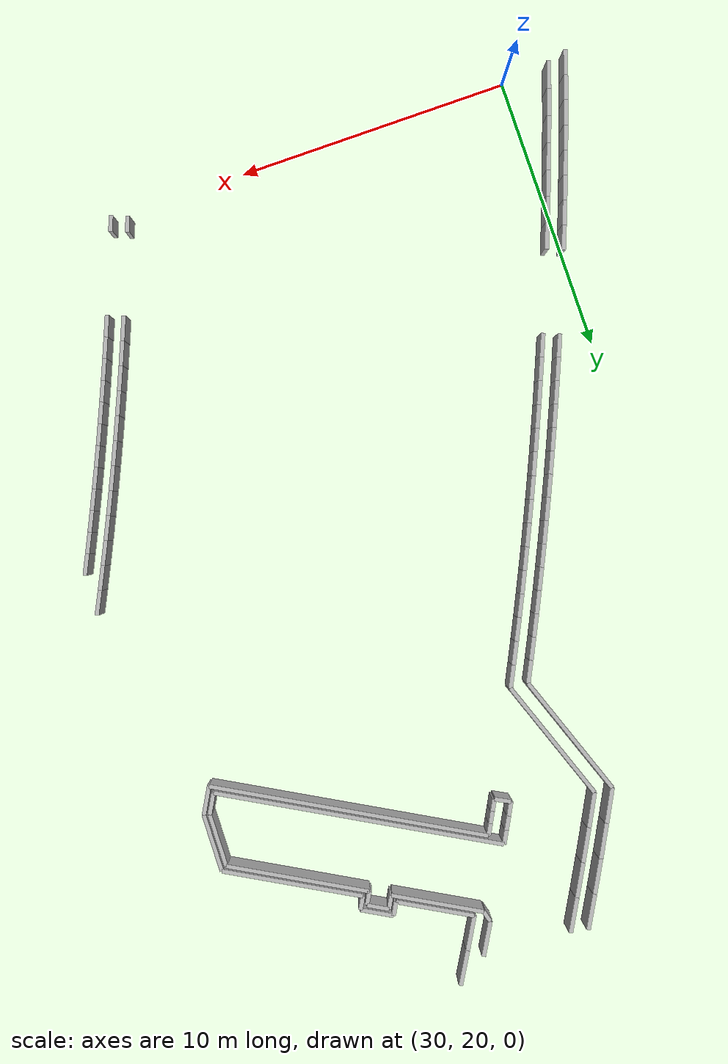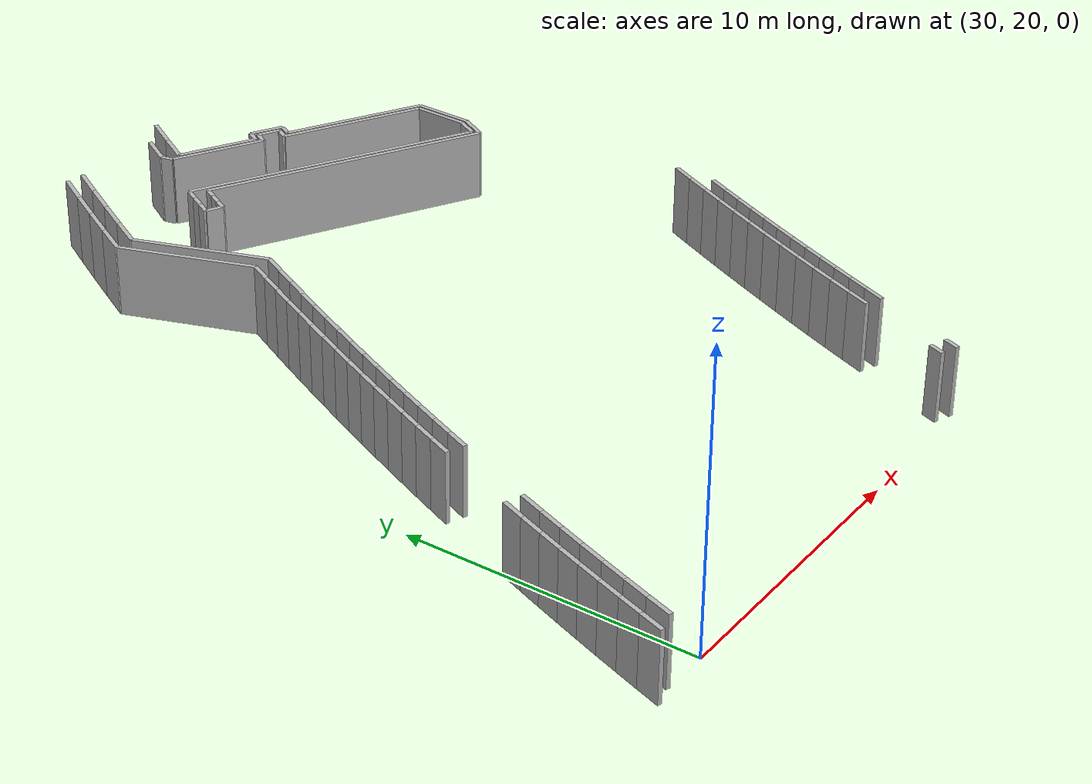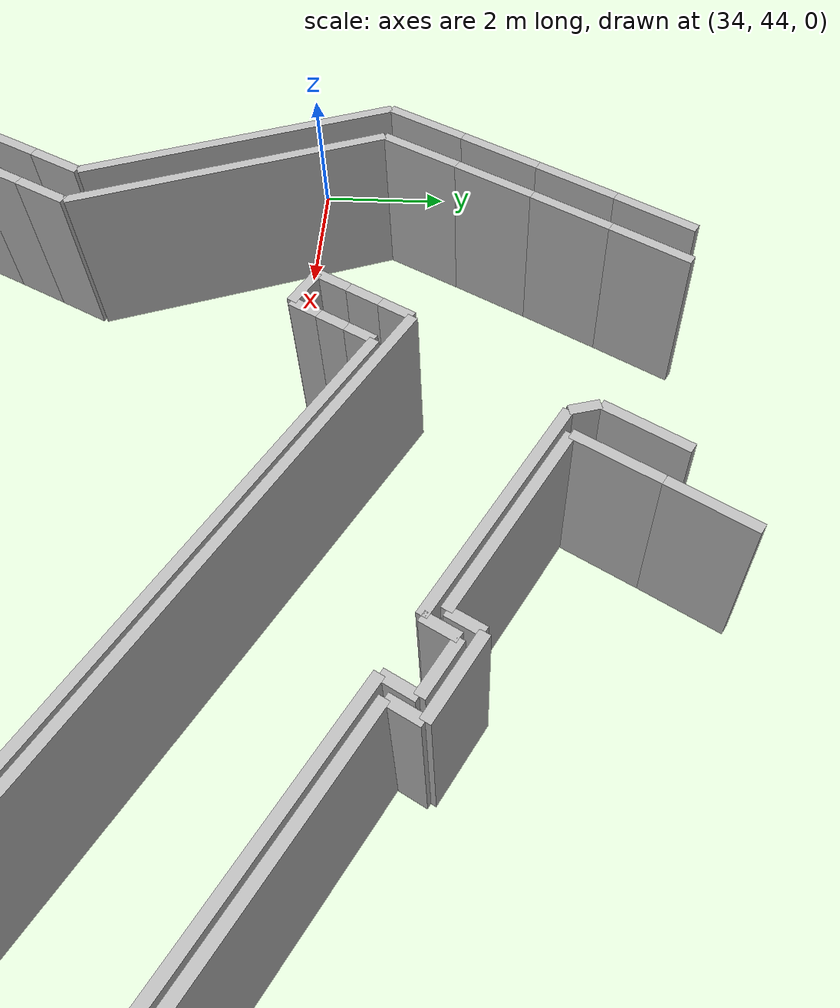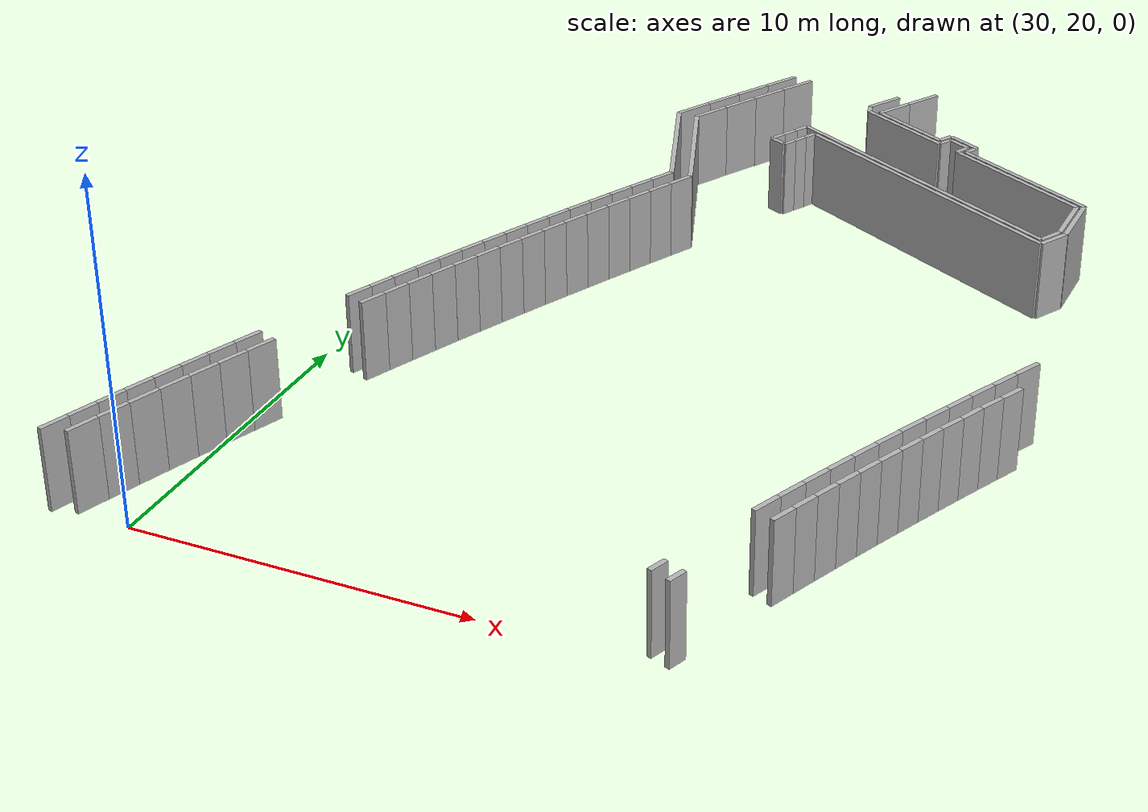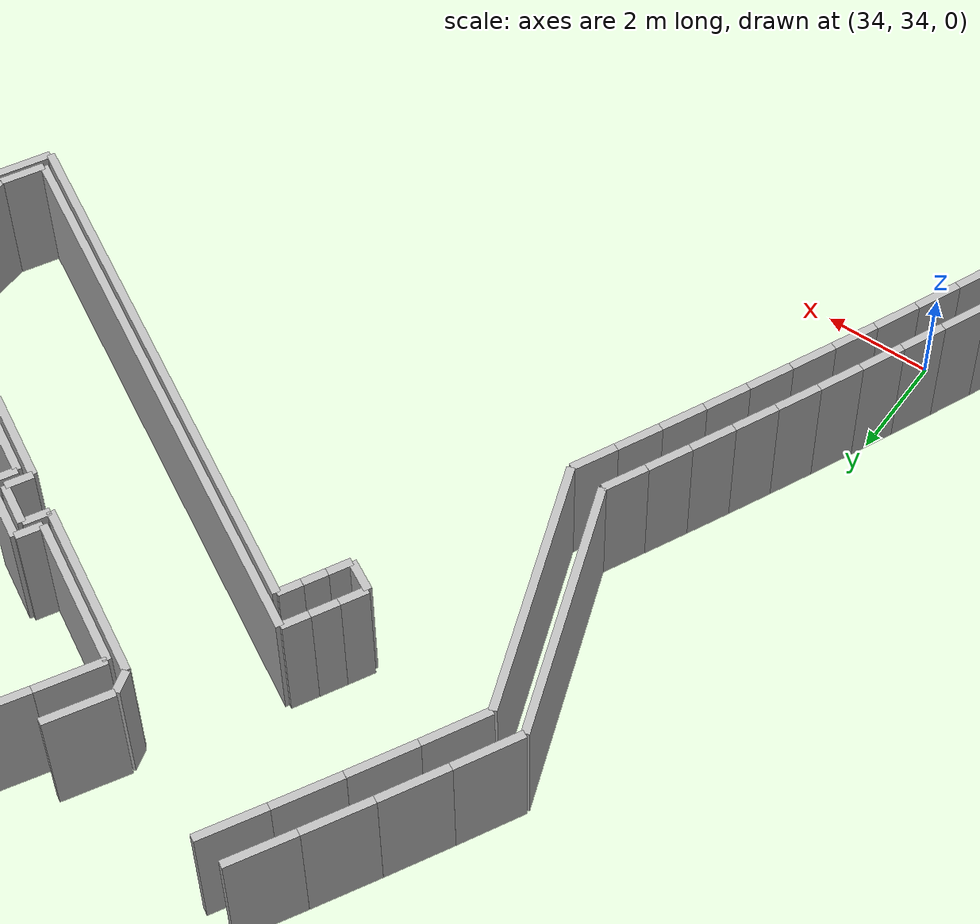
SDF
<sdf version="1.6">
 <model name="sps_0104">
  <static>1</static>
  <allow_auto_disable>0</allow_auto_disable>
  <link name="Wall18">
   <collision name="collision"><geometry><box><size>4.78812 0.15 2.5</size></box></geometry></collision>
   <visual name="visual">
    <geometry><box><size>4.78812 0.15 2.5</size></box></geometry>
    <transparency>0.0</transparency>
   </visual>
   <pose>35.5532 43.0615 1.25 0 -0 1.91603</pose>
  </link>
  <link name="Wall20">
   <collision name="collision"><geometry><box><size>5.20006 0.15 2.5</size></box></geometry></collision>
   <visual name="visual">
    <geometry><box><size>5.20006 0.15 2.5</size></box></geometry>
    <transparency>0.0</transparency>
   </visual>
   <pose>46.4302 44.7029 1.25 0 0 -0.509252</pose>
  </link>
  <link name="Wall21">
   <collision name="collision"><geometry><box><size>2.09372 0.15 2.5</size></box></geometry></collision>
   <visual name="visual">
    <geometry><box><size>2.09372 0.15 2.5</size></box></geometry>
    <transparency>0.0</transparency>
   </visual>
   <pose>48.8801 42.5041 1.25 0 0 -1.59298</pose>
  </link>
  <link name="Wall394">
   <collision name="collision"><geometry><box><size>0.800152 0.15 2.5</size></box></geometry></collision>
   <visual name="visual">
    <geometry><box><size>0.800152 0.15 2.5</size></box></geometry>
    <transparency>0.0</transparency>
   </visual>
   <pose>44.055 46.6013 1.25 0 0 -0.509751</pose>
  </link>
  <link name="Wall743">
   <collision name="collision"><geometry><box><size>3.34433 0.15 2.5</size></box></geometry></collision>
   <visual name="visual">
    <geometry><box><size>3.34433 0.15 2.5</size></box></geometry>
    <transparency>0.0</transparency>
   </visual>
   <pose>42.0015 47.1758 1.25 0 0 -0.509018</pose>
  </link>
  <link name="Wall744">
   <collision name="collision"><geometry><box><size>0.500654 0.15 2.5</size></box></geometry></collision>
   <visual name="visual">
    <geometry><box><size>0.500654 0.15 2.5</size></box></geometry>
    <transparency>0.0</transparency>
   </visual>
   <pose>43.5065 46.8509 1.25 0 -0 1.06183</pose>
  </link>
  <link name="Wall747">
   <collision name="collision"><geometry><box><size>10.1437 0.15 2.5</size></box></geometry></collision>
   <visual name="visual">
    <geometry><box><size>10.1437 0.15 2.5</size></box></geometry>
    <transparency>0.0</transparency>
   </visual>
   <pose>43.917 43.0137 1.25 0 0 -0.509242</pose>
  </link>
  <link name="Wall1130">
   <collision name="collision"><geometry><box><size>0.499388 0.15 2.5</size></box></geometry></collision>
   <visual name="visual">
    <geometry><box><size>0.499388 0.15 2.5</size></box></geometry>
    <transparency>0.0</transparency>
   </visual>
   <pose>44.2822 46.1883 1.25 0 0 -2.08174</pose>
  </link>
  <link name="Wall1134">
   <collision name="collision"><geometry><box><size>0.800069 0.15 2.5</size></box></geometry></collision>
   <visual name="visual">
    <geometry><box><size>0.800069 0.15 2.5</size></box></geometry>
    <transparency>0.0</transparency>
   </visual>
   <pose>48.463 41.1631 1.25 0 0 -2.08052</pose>
  </link>
  <link name="Wall1460">
   <collision name="collision"><geometry><box><size>2.84281 0.15 2.5</size></box></geometry></collision>
   <visual name="visual">
    <geometry><box><size>2.84281 0.15 2.5</size></box></geometry>
    <transparency>0.0</transparency>
   </visual>
   <pose>42.1435 47.3253 1.25 0 0 -0.509271</pose>
  </link>
  <link name="Wall1463">
   <collision name="collision"><geometry><box><size>10.5448 0.15 2.5</size></box></geometry></collision>
   <visual name="visual">
    <geometry><box><size>10.5448 0.15 2.5</size></box></geometry>
    <transparency>0.0</transparency>
   </visual>
   <pose>43.6644 43.3842 1.25 0 0 -0.509219</pose>
  </link>
  <link name="Wall1465">
   <collision name="collision"><geometry><box><size>1.04952 0.15 2.5</size></box></geometry></collision>
   <visual name="visual">
    <geometry><box><size>1.04952 0.15 2.5</size></box></geometry>
    <transparency>0.0</transparency>
   </visual>
   <pose>48.601 40.9993 1.25 0 0 -2.07997</pose>
  </link>
  <link name="Wall1750">
   <collision name="collision"><geometry><box><size>0.600396 0.15 2.5</size></box></geometry></collision>
   <visual name="visual">
    <geometry><box><size>0.600396 0.15 2.5</size></box></geometry>
    <transparency>0.0</transparency>
   </visual>
   <pose>38.5906 44.4573 1.25 0 -0 2.65107</pose>
  </link>
  <link name="Wall1751">
   <collision name="collision"><geometry><box><size>0.422163 0.15 2.5</size></box></geometry></collision>
   <visual name="visual">
    <geometry><box><size>0.422163 0.15 2.5</size></box></geometry>
    <transparency>0.0</transparency>
   </visual>
   <pose>40.4849 48.1941 1.25 0 0 -1.30018</pose>
  </link>
  <link name="Wall1753">
   <collision name="collision"><geometry><box><size>0.499388 0.15 2.5</size></box></geometry></collision>
   <visual name="visual">
    <geometry><box><size>0.499388 0.15 2.5</size></box></geometry>
    <transparency>0.0</transparency>
   </visual>
   <pose>43.5837 46.5787 1.25 0 -0 1.05985</pose>
  </link>
  <link name="Wall1754">
   <collision name="collision"><geometry><box><size>0.500654 0.15 2.5</size></box></geometry></collision>
   <visual name="visual">
    <geometry><box><size>0.500654 0.15 2.5</size></box></geometry>
    <transparency>0.0</transparency>
   </visual>
   <pose>44.5543 46.2657 1.25 0 0 -2.07977</pose>
  </link>
  <link name="Wall1758">
   <collision name="collision"><geometry><box><size>1.92349 0.15 2.5</size></box></geometry></collision>
   <visual name="visual">
    <geometry><box><size>1.92349 0.15 2.5</size></box></geometry>
    <transparency>0.0</transparency>
   </visual>
   <pose>48.6793 42.4738 1.25 0 0 -1.59266</pose>
  </link>
  <link name="Wall2088">
   <collision name="collision"><geometry><box><size>4.78007 0.15 2.5</size></box></geometry></collision>
   <visual name="visual">
    <geometry><box><size>4.78007 0.15 2.5</size></box></geometry>
    <transparency>0.0</transparency>
   </visual>
   <pose>36.2067 43.0187 1.25 0 -0 1.91602</pose>
  </link>
  <link name="Wall2095">
   <collision name="collision"><geometry><box><size>5.12073 0.15 2.5</size></box></geometry></collision>
   <visual name="visual">
    <geometry><box><size>5.12073 0.15 2.5</size></box></geometry>
    <transparency>0.0</transparency>
   </visual>
   <pose>46.6678 44.7989 1.25 0 0 -0.509233</pose>
  </link>
  <link name="Wall2471">
   <collision name="collision"><geometry><box><size>1.20014 0.15 2.5</size></box></geometry></collision>
   <visual name="visual">
    <geometry><box><size>1.20014 0.15 2.5</size></box></geometry>
    <transparency>0.0</transparency>
   </visual>
   <pose>44.1523 46.7769 1.25 0 0 -0.509356</pose>
  </link>
  <link name="Wall6435">
   <collision name="collision"><geometry><box><size>0.514157 0.15 2.5</size></box></geometry></collision>
   <visual name="visual">
    <geometry><box><size>0.514157 0.15 2.5</size></box></geometry>
    <transparency>0.0</transparency>
   </visual>
   <pose>38.4477 44.8251 1.25 0 -0 1.0771</pose>
  </link>
  <link name="Wall6436">
   <collision name="collision"><geometry><box><size>0.51415 0.15 2.5</size></box></geometry></collision>
   <visual name="visual">
    <geometry><box><size>0.51415 0.15 2.5</size></box></geometry>
    <transparency>0.0</transparency>
   </visual>
   <pose>38.692 45.2775 1.25 0 -0 1.07412</pose>
  </link>
  <link name="Wall6437">
   <collision name="collision"><geometry><box><size>0.51391 0.15 2.5</size></box></geometry></collision>
   <visual name="visual">
    <geometry><box><size>0.51391 0.15 2.5</size></box></geometry>
    <transparency>0.0</transparency>
   </visual>
   <pose>38.9377 45.729 1.25 0 -0 1.07076</pose>
  </link>
  <link name="Wall6438">
   <collision name="collision"><geometry><box><size>0.56098 0.15 2.5</size></box></geometry></collision>
   <visual name="visual">
    <geometry><box><size>0.56098 0.15 2.5</size></box></geometry>
    <transparency>0.0</transparency>
   </visual>
   <pose>44.5047 20.5969 1.25 0 0 -1.93385</pose>
  </link>
  <link name="Wall6494">
   <collision name="collision"><geometry><box><size>1.27311 0.15 2.5</size></box></geometry></collision>
   <visual name="visual">
    <geometry><box><size>1.27311 0.15 2.5</size></box></geometry>
    <transparency>0.0</transparency>
   </visual>
   <pose>40.7465 48.9489 1.25 0 0 -2.09393</pose>
  </link>
  <link name="Wall8968">
   <collision name="collision"><geometry><box><size>0.557815 0.15 2.5</size></box></geometry></collision>
   <visual name="visual">
    <geometry><box><size>0.557815 0.15 2.5</size></box></geometry>
    <transparency>0.0</transparency>
   </visual>
   <pose>45.0632 20.3786 1.25 0 0 -1.93401</pose>
  </link>
  <link name="Wall9016">
   <collision name="collision"><geometry><box><size>0.895531 0.15 2.5</size></box></geometry></collision>
   <visual name="visual">
    <geometry><box><size>0.895531 0.15 2.5</size></box></geometry>
    <transparency>0.0</transparency>
   </visual>
   <pose>49.9253 33.0418 1.25 0 0 -2.02929</pose>
  </link>
  <link name="Wall9017">
   <collision name="collision"><geometry><box><size>0.895579 0.15 2.5</size></box></geometry></collision>
   <visual name="visual">
    <geometry><box><size>0.895579 0.15 2.5</size></box></geometry>
    <transparency>0.0</transparency>
   </visual>
   <pose>49.5315 32.2375 1.25 0 0 -2.02289</pose>
  </link>
  <link name="Wall9018">
   <collision name="collision"><geometry><box><size>0.895603 0.15 2.5</size></box></geometry></collision>
   <visual name="visual">
    <geometry><box><size>0.895603 0.15 2.5</size></box></geometry>
    <transparency>0.0</transparency>
   </visual>
   <pose>49.1427 31.4307 1.25 0 0 -2.01683</pose>
  </link>
  <link name="Wall9019">
   <collision name="collision"><geometry><box><size>0.895479 0.15 2.5</size></box></geometry></collision>
   <visual name="visual">
    <geometry><box><size>0.895479 0.15 2.5</size></box></geometry>
    <transparency>0.0</transparency>
   </visual>
   <pose>48.759 30.6215 1.25 0 0 -2.01033</pose>
  </link>
  <link name="Wall9020">
   <collision name="collision"><geometry><box><size>0.895627 0.15 2.5</size></box></geometry></collision>
   <visual name="visual">
    <geometry><box><size>0.895627 0.15 2.5</size></box></geometry>
    <transparency>0.0</transparency>
   </visual>
   <pose>48.3804 29.8099 1.25 0 0 -2.00424</pose>
  </link>
  <link name="Wall9021">
   <collision name="collision"><geometry><box><size>0.895632 0.15 2.5</size></box></geometry></collision>
   <visual name="visual">
    <geometry><box><size>0.895632 0.15 2.5</size></box></geometry>
    <transparency>0.0</transparency>
   </visual>
   <pose>48.0069 28.9959 1.25 0 0 -1.99771</pose>
  </link>
  <link name="Wall9022">
   <collision name="collision"><geometry><box><size>0.895496 0.15 2.5</size></box></geometry></collision>
   <visual name="visual">
    <geometry><box><size>0.895496 0.15 2.5</size></box></geometry>
    <transparency>0.0</transparency>
   </visual>
   <pose>47.6385 28.1796 1.25 0 0 -1.99157</pose>
  </link>
  <link name="Wall9023">
   <collision name="collision"><geometry><box><size>0.895697 0.15 2.5</size></box></geometry></collision>
   <visual name="visual">
    <geometry><box><size>0.895697 0.15 2.5</size></box></geometry>
    <transparency>0.0</transparency>
   </visual>
   <pose>47.2753 27.361 1.25 0 0 -1.98536</pose>
  </link>
  <link name="Wall9024">
   <collision name="collision"><geometry><box><size>0.895507 0.15 2.5</size></box></geometry></collision>
   <visual name="visual">
    <geometry><box><size>0.895507 0.15 2.5</size></box></geometry>
    <transparency>0.0</transparency>
   </visual>
   <pose>46.9172 26.5401 1.25 0 0 -1.97891</pose>
  </link>
  <link name="Wall9025">
   <collision name="collision"><geometry><box><size>0.895611 0.15 2.5</size></box></geometry></collision>
   <visual name="visual">
    <geometry><box><size>0.895611 0.15 2.5</size></box></geometry>
    <transparency>0.0</transparency>
   </visual>
   <pose>46.5643 25.717 1.25 0 0 -1.97278</pose>
  </link>
  <link name="Wall9026">
   <collision name="collision"><geometry><box><size>0.89555 0.15 2.5</size></box></geometry></collision>
   <visual name="visual">
    <geometry><box><size>0.89555 0.15 2.5</size></box></geometry>
    <transparency>0.0</transparency>
   </visual>
   <pose>46.2165 24.8917 1.25 0 0 -1.9663</pose>
  </link>
  <link name="Wall9027">
   <collision name="collision"><geometry><box><size>0.895417 0.15 2.5</size></box></geometry></collision>
   <visual name="visual">
    <geometry><box><size>0.895417 0.15 2.5</size></box></geometry>
    <transparency>0.0</transparency>
   </visual>
   <pose>45.874 24.0643 1.25 0 0 -1.96024</pose>
  </link>
  <link name="Wall9119">
   <collision name="collision"><geometry><box><size>1.2717 0.15 2.5</size></box></geometry></collision>
   <visual name="visual">
    <geometry><box><size>1.2717 0.15 2.5</size></box></geometry>
    <transparency>0.0</transparency>
   </visual>
   <pose>37.5349 49.1719 1.25 0 0 -2.08512</pose>
  </link>
  <link name="Wall9120">
   <collision name="collision"><geometry><box><size>1.27178 0.15 2.5</size></box></geometry></collision>
   <visual name="visual">
    <geometry><box><size>1.27178 0.15 2.5</size></box></geometry>
    <transparency>0.0</transparency>
   </visual>
   <pose>36.9137 48.0622 1.25 0 0 -2.07717</pose>
  </link>
  <link name="Wall9121">
   <collision name="collision"><geometry><box><size>1.2717 0.15 2.5</size></box></geometry></collision>
   <visual name="visual">
    <geometry><box><size>1.2717 0.15 2.5</size></box></geometry>
    <transparency>0.0</transparency>
   </visual>
   <pose>36.3011 46.9477 1.25 0 0 -2.06948</pose>
  </link>
  <link name="Wall9122">
   <collision name="collision"><geometry><box><size>1.2716 0.15 2.5</size></box></geometry></collision>
   <visual name="visual">
    <geometry><box><size>1.2716 0.15 2.5</size></box></geometry>
    <transparency>0.0</transparency>
   </visual>
   <pose>35.6974 45.8285 1.25 0 0 -2.06145</pose>
  </link>
  <link name="Wall16506">
   <collision name="collision"><geometry><box><size>0.836971 0.15 2.5</size></box></geometry></collision>
   <visual name="visual">
    <geometry><box><size>0.836971 0.15 2.5</size></box></geometry>
    <transparency>0.0</transparency>
   </visual>
   <pose>36.1771 40.434 1.25 0 0 -2.03236</pose>
  </link>
  <link name="Wall16507">
   <collision name="collision"><geometry><box><size>0.837127 0.15 2.5</size></box></geometry></collision>
   <visual name="visual">
    <geometry><box><size>0.837127 0.15 2.5</size></box></geometry>
    <transparency>0.0</transparency>
   </visual>
   <pose>35.8062 39.6836 1.25 0 0 -2.0273</pose>
  </link>
  <link name="Wall16508">
   <collision name="collision"><geometry><box><size>0.836952 0.15 2.5</size></box></geometry></collision>
   <visual name="visual">
    <geometry><box><size>0.836952 0.15 2.5</size></box></geometry>
    <transparency>0.0</transparency>
   </visual>
   <pose>35.4392 38.9313 1.25 0 0 -2.02205</pose>
  </link>
  <link name="Wall16509">
   <collision name="collision"><geometry><box><size>0.837046 0.15 2.5</size></box></geometry></collision>
   <visual name="visual">
    <geometry><box><size>0.837046 0.15 2.5</size></box></geometry>
    <transparency>0.0</transparency>
   </visual>
   <pose>35.0762 38.1771 1.25 0 0 -2.01674</pose>
  </link>
  <link name="Wall16510">
   <collision name="collision"><geometry><box><size>0.836973 0.15 2.5</size></box></geometry></collision>
   <visual name="visual">
    <geometry><box><size>0.836973 0.15 2.5</size></box></geometry>
    <transparency>0.0</transparency>
   </visual>
   <pose>34.7172 37.421 1.25 0 0 -2.01145</pose>
  </link>
  <link name="Wall16511">
   <collision name="collision"><geometry><box><size>0.837059 0.15 2.5</size></box></geometry></collision>
   <visual name="visual">
    <geometry><box><size>0.837059 0.15 2.5</size></box></geometry>
    <transparency>0.0</transparency>
   </visual>
   <pose>34.3621 36.663 1.25 0 0 -2.00617</pose>
  </link>
  <link name="Wall16512">
   <collision name="collision"><geometry><box><size>0.837032 0.15 2.5</size></box></geometry></collision>
   <visual name="visual">
    <geometry><box><size>0.837032 0.15 2.5</size></box></geometry>
    <transparency>0.0</transparency>
   </visual>
   <pose>34.0111 35.9031 1.25 0 0 -2.00088</pose>
  </link>
  <link name="Wall16513">
   <collision name="collision"><geometry><box><size>0.837103 0.15 2.5</size></box></geometry></collision>
   <visual name="visual">
    <geometry><box><size>0.837103 0.15 2.5</size></box></geometry>
    <transparency>0.0</transparency>
   </visual>
   <pose>33.6641 35.1414 1.25 0 0 -1.99579</pose>
  </link>
  <link name="Wall16514">
   <collision name="collision"><geometry><box><size>0.837017 0.15 2.5</size></box></geometry></collision>
   <visual name="visual">
    <geometry><box><size>0.837017 0.15 2.5</size></box></geometry>
    <transparency>0.0</transparency>
   </visual>
   <pose>33.321 34.3779 1.25 0 0 -1.99041</pose>
  </link>
  <link name="Wall16515">
   <collision name="collision"><geometry><box><size>0.83693 0.15 2.5</size></box></geometry></collision>
   <visual name="visual">
    <geometry><box><size>0.83693 0.15 2.5</size></box></geometry>
    <transparency>0.0</transparency>
   </visual>
   <pose>32.9821 33.6126 1.25 0 0 -1.98495</pose>
  </link>
  <link name="Wall16516">
   <collision name="collision"><geometry><box><size>0.837094 0.15 2.5</size></box></geometry></collision>
   <visual name="visual">
    <geometry><box><size>0.837094 0.15 2.5</size></box></geometry>
    <transparency>0.0</transparency>
   </visual>
   <pose>32.6472 32.8455 1.25 0 0 -1.97993</pose>
  </link>
  <link name="Wall16517">
   <collision name="collision"><geometry><box><size>0.837039 0.15 2.5</size></box></geometry></collision>
   <visual name="visual">
    <geometry><box><size>0.837039 0.15 2.5</size></box></geometry>
    <transparency>0.0</transparency>
   </visual>
   <pose>32.3164 32.0766 1.25 0 0 -1.97424</pose>
  </link>
  <link name="Wall16518">
   <collision name="collision"><geometry><box><size>0.837136 0.15 2.5</size></box></geometry></collision>
   <visual name="visual">
    <geometry><box><size>0.837136 0.15 2.5</size></box></geometry>
    <transparency>0.0</transparency>
   </visual>
   <pose>31.9896 31.3059 1.25 0 0 -1.96928</pose>
  </link>
  <link name="Wall16519">
   <collision name="collision"><geometry><box><size>0.836996 0.15 2.5</size></box></geometry></collision>
   <visual name="visual">
    <geometry><box><size>0.836996 0.15 2.5</size></box></geometry>
    <transparency>0.0</transparency>
   </visual>
   <pose>31.667 30.5335 1.25 0 0 -1.96358</pose>
  </link>
  <link name="Wall16520">
   <collision name="collision"><geometry><box><size>0.837136 0.15 2.5</size></box></geometry></collision>
   <visual name="visual">
    <geometry><box><size>0.837136 0.15 2.5</size></box></geometry>
    <transparency>0.0</transparency>
   </visual>
   <pose>31.3486 29.7594 1.25 0 0 -1.95863</pose>
  </link>
  <link name="Wall16540">
   <collision name="collision"><geometry><box><size>1.27232 0.15 2.5</size></box></geometry></collision>
   <visual name="visual">
    <geometry><box><size>1.27232 0.15 2.5</size></box></geometry>
    <transparency>0.0</transparency>
   </visual>
   <pose>41.8593 49.6696 1.25 0 0 -2.10134</pose>
  </link>
  <link name="Wall16541">
   <collision name="collision"><geometry><box><size>1.27239 0.15 2.5</size></box></geometry></collision>
   <visual name="visual">
    <geometry><box><size>1.27239 0.15 2.5</size></box></geometry>
    <transparency>0.0</transparency>
   </visual>
   <pose>41.2199 48.5696 1.25 0 0 -2.09332</pose>
  </link>
  <link name="Wall16563">
   <collision name="collision"><geometry><box><size>0.778227 0.15 2.5</size></box></geometry></collision>
   <visual name="visual">
    <geometry><box><size>0.778227 0.15 2.5</size></box></geometry>
    <transparency>0.0</transparency>
   </visual>
   <pose>49.8927 31.6082 1.25 0 0 -2.0201</pose>
  </link>
  <link name="Wall16564">
   <collision name="collision"><geometry><box><size>0.778244 0.15 2.5</size></box></geometry></collision>
   <visual name="visual">
    <geometry><box><size>0.778244 0.15 2.5</size></box></geometry>
    <transparency>0.0</transparency>
   </visual>
   <pose>49.5565 30.9063 1.25 0 0 -2.0147</pose>
  </link>
  <link name="Wall16565">
   <collision name="collision"><geometry><box><size>0.778203 0.15 2.5</size></box></geometry></collision>
   <visual name="visual">
    <geometry><box><size>0.778203 0.15 2.5</size></box></geometry>
    <transparency>0.0</transparency>
   </visual>
   <pose>49.2242 30.2026 1.25 0 0 -2.00926</pose>
  </link>
  <link name="Wall16566">
   <collision name="collision"><geometry><box><size>0.778189 0.15 2.5</size></box></geometry></collision>
   <visual name="visual">
    <geometry><box><size>0.778189 0.15 2.5</size></box></geometry>
    <transparency>0.0</transparency>
   </visual>
   <pose>48.8958 29.4971 1.25 0 0 -2.00364</pose>
  </link>
  <link name="Wall16567">
   <collision name="collision"><geometry><box><size>0.778118 0.15 2.5</size></box></geometry></collision>
   <visual name="visual">
    <geometry><box><size>0.778118 0.15 2.5</size></box></geometry>
    <transparency>0.0</transparency>
   </visual>
   <pose>48.5714 28.7898 1.25 0 0 -1.99799</pose>
  </link>
  <link name="Wall16568">
   <collision name="collision"><geometry><box><size>0.778248 0.15 2.5</size></box></geometry></collision>
   <visual name="visual">
    <geometry><box><size>0.778248 0.15 2.5</size></box></geometry>
    <transparency>0.0</transparency>
   </visual>
   <pose>48.2508 28.0807 1.25 0 0 -1.99283</pose>
  </link>
  <link name="Wall16569">
   <collision name="collision"><geometry><box><size>0.778361 0.15 2.5</size></box></geometry></collision>
   <visual name="visual">
    <geometry><box><size>0.778361 0.15 2.5</size></box></geometry>
    <transparency>0.0</transparency>
   </visual>
   <pose>47.934 27.3698 1.25 0 0 -1.98719</pose>
  </link>
  <link name="Wall16570">
   <collision name="collision"><geometry><box><size>0.778139 0.15 2.5</size></box></geometry></collision>
   <visual name="visual">
    <geometry><box><size>0.778139 0.15 2.5</size></box></geometry>
    <transparency>0.0</transparency>
   </visual>
   <pose>47.6212 26.6572 1.25 0 0 -1.98166</pose>
  </link>
  <link name="Wall16571">
   <collision name="collision"><geometry><box><size>0.778318 0.15 2.5</size></box></geometry></collision>
   <visual name="visual">
    <geometry><box><size>0.778318 0.15 2.5</size></box></geometry>
    <transparency>0.0</transparency>
   </visual>
   <pose>47.3123 25.9429 1.25 0 0 -1.97626</pose>
  </link>
  <link name="Wall16572">
   <collision name="collision"><geometry><box><size>0.777959 0.15 2.5</size></box></geometry></collision>
   <visual name="visual">
    <geometry><box><size>0.777959 0.15 2.5</size></box></geometry>
    <transparency>0.0</transparency>
   </visual>
   <pose>47.0074 25.227 1.25 0 0 -1.97058</pose>
  </link>
  <link name="Wall16573">
   <collision name="collision"><geometry><box><size>0.778128 0.15 2.5</size></box></geometry></collision>
   <visual name="visual">
    <geometry><box><size>0.778128 0.15 2.5</size></box></geometry>
    <transparency>0.0</transparency>
   </visual>
   <pose>46.7065 24.5095 1.25 0 0 -1.96521</pose>
  </link>
  <link name="Wall16574">
   <collision name="collision"><geometry><box><size>0.778352 0.15 2.5</size></box></geometry></collision>
   <visual name="visual">
    <geometry><box><size>0.778352 0.15 2.5</size></box></geometry>
    <transparency>0.0</transparency>
   </visual>
   <pose>46.4094 23.7902 1.25 0 0 -1.95975</pose>
  </link>
  <link name="Wall20889">
   <collision name="collision"><geometry><box><size>0.443505 0.15 2.5</size></box></geometry></collision>
   <visual name="visual">
    <geometry><box><size>0.443505 0.15 2.5</size></box></geometry>
    <transparency>0.0</transparency>
   </visual>
   <pose>38.9604 44.5112 1.25 0 -0 1.07748</pose>
  </link>
  <link name="Wall20890">
   <collision name="collision"><geometry><box><size>0.443593 0.15 2.5</size></box></geometry></collision>
   <visual name="visual">
    <geometry><box><size>0.443593 0.15 2.5</size></box></geometry>
    <transparency>0.0</transparency>
   </visual>
   <pose>39.171 44.9016 1.25 0 -0 1.07508</pose>
  </link>
  <link name="Wall20891">
   <collision name="collision"><geometry><box><size>0.443639 0.15 2.5</size></box></geometry></collision>
   <visual name="visual">
    <geometry><box><size>0.443639 0.15 2.5</size></box></geometry>
    <transparency>0.0</transparency>
   </visual>
   <pose>39.3826 45.2915 1.25 0 -0 1.07201</pose>
  </link>
  <link name="Wall20975">
   <collision name="collision"><geometry><box><size>1.28703 0.15 2.5</size></box></geometry></collision>
   <visual name="visual">
    <geometry><box><size>1.28703 0.15 2.5</size></box></geometry>
    <transparency>0.0</transparency>
   </visual>
   <pose>36.8994 49.2684 1.25 0 0 -2.08373</pose>
  </link>
  <link name="Wall20976">
   <collision name="collision"><geometry><box><size>1.28684 0.15 2.5</size></box></geometry></collision>
   <visual name="visual">
    <geometry><box><size>1.28684 0.15 2.5</size></box></geometry>
    <transparency>0.0</transparency>
   </visual>
   <pose>36.2724 48.1446 1.25 0 0 -2.07578</pose>
  </link>
  <link name="Wall20977">
   <collision name="collision"><geometry><box><size>1.28695 0.15 2.5</size></box></geometry></collision>
   <visual name="visual">
    <geometry><box><size>1.28695 0.15 2.5</size></box></geometry>
    <transparency>0.0</transparency>
   </visual>
   <pose>35.6543 47.0159 1.25 0 0 -2.06783</pose>
  </link>
  <link name="Wall20978">
   <collision name="collision"><geometry><box><size>1.28675 0.15 2.5</size></box></geometry></collision>
   <visual name="visual">
    <geometry><box><size>1.28675 0.15 2.5</size></box></geometry>
    <transparency>0.0</transparency>
   </visual>
   <pose>35.0452 45.8823 1.25 0 0 -2.05973</pose>
  </link>
  <link name="Wall24371">
   <collision name="collision"><geometry><box><size>0.894769 0.15 2.5</size></box></geometry></collision>
   <visual name="visual">
    <geometry><box><size>0.894769 0.15 2.5</size></box></geometry>
    <transparency>0.0</transparency>
   </visual>
   <pose>29.9238 26.1647 1.25 0 0 -1.93391</pose>
  </link>
  <link name="Wall24372">
   <collision name="collision"><geometry><box><size>0.894646 0.15 2.5</size></box></geometry></collision>
   <visual name="visual">
    <geometry><box><size>0.894646 0.15 2.5</size></box></geometry>
    <transparency>0.0</transparency>
   </visual>
   <pose>29.6081 25.3275 1.25 0 0 -1.92871</pose>
  </link>
  <link name="Wall24373">
   <collision name="collision"><geometry><box><size>0.894681 0.15 2.5</size></box></geometry></collision>
   <visual name="visual">
    <geometry><box><size>0.894681 0.15 2.5</size></box></geometry>
    <transparency>0.0</transparency>
   </visual>
   <pose>29.2972 24.4886 1.25 0 0 -1.92273</pose>
  </link>
  <link name="Wall24374">
   <collision name="collision"><geometry><box><size>0.894758 0.15 2.5</size></box></geometry></collision>
   <visual name="visual">
    <geometry><box><size>0.894758 0.15 2.5</size></box></geometry>
    <transparency>0.0</transparency>
   </visual>
   <pose>28.9911 23.6479 1.25 0 0 -1.91718</pose>
  </link>
  <link name="Wall24375">
   <collision name="collision"><geometry><box><size>0.894821 0.15 2.5</size></box></geometry></collision>
   <visual name="visual">
    <geometry><box><size>0.894821 0.15 2.5</size></box></geometry>
    <transparency>0.0</transparency>
   </visual>
   <pose>28.6898 22.8054 1.25 0 0 -1.91151</pose>
  </link>
  <link name="Wall24376">
   <collision name="collision"><geometry><box><size>0.894659 0.15 2.5</size></box></geometry></collision>
   <visual name="visual">
    <geometry><box><size>0.894659 0.15 2.5</size></box></geometry>
    <transparency>0.0</transparency>
   </visual>
   <pose>28.3932 21.9612 1.25 0 0 -1.90564</pose>
  </link>
  <link name="Wall24377">
   <collision name="collision"><geometry><box><size>0.894705 0.15 2.5</size></box></geometry></collision>
   <visual name="visual">
    <geometry><box><size>0.894705 0.15 2.5</size></box></geometry>
    <transparency>0.0</transparency>
   </visual>
   <pose>28.1016 21.1154 1.25 0 0 -1.90014</pose>
  </link>
  <link name="Wall24378">
   <collision name="collision"><geometry><box><size>0.894854 0.15 2.5</size></box></geometry></collision>
   <visual name="visual">
    <geometry><box><size>0.894854 0.15 2.5</size></box></geometry>
    <transparency>0.0</transparency>
   </visual>
   <pose>27.8146 20.2679 1.25 0 0 -1.89447</pose>
  </link>
  <link name="Wall24413">
   <collision name="collision"><geometry><box><size>0.948476 0.15 2.5</size></box></geometry></collision>
   <visual name="visual">
    <geometry><box><size>0.948476 0.15 2.5</size></box></geometry>
    <transparency>0.0</transparency>
   </visual>
   <pose>30.4794 25.923 1.25 0 0 -1.93401</pose>
  </link>
  <link name="Wall24414">
   <collision name="collision"><geometry><box><size>0.948467 0.15 2.5</size></box></geometry></collision>
   <visual name="visual">
    <geometry><box><size>0.948467 0.15 2.5</size></box></geometry>
    <transparency>0.0</transparency>
   </visual>
   <pose>30.1451 25.0354 1.25 0 0 -1.92796</pose>
  </link>
  <link name="Wall24415">
   <collision name="collision"><geometry><box><size>0.948353 0.15 2.5</size></box></geometry></collision>
   <visual name="visual">
    <geometry><box><size>0.948353 0.15 2.5</size></box></geometry>
    <transparency>0.0</transparency>
   </visual>
   <pose>29.8163 24.1458 1.25 0 0 -1.9217</pose>
  </link>
  <link name="Wall24416">
   <collision name="collision"><geometry><box><size>0.973382 0.15 2.5</size></box></geometry></collision>
   <visual name="visual">
    <geometry><box><size>0.973382 0.15 2.5</size></box></geometry>
    <transparency>0.0</transparency>
   </visual>
   <pose>29.4887 23.2425 1.25 0 0 -1.91583</pose>
  </link>
  <link name="Wall24417">
   <collision name="collision"><geometry><box><size>0.973397 0.15 2.5</size></box></geometry></collision>
   <visual name="visual">
    <geometry><box><size>0.973397 0.15 2.5</size></box></geometry>
    <transparency>0.0</transparency>
   </visual>
   <pose>29.1623 22.3255 1.25 0 0 -1.9097</pose>
  </link>
  <link name="Wall24418">
   <collision name="collision"><geometry><box><size>0.97333 0.15 2.5</size></box></geometry></collision>
   <visual name="visual">
    <geometry><box><size>0.97333 0.15 2.5</size></box></geometry>
    <transparency>0.0</transparency>
   </visual>
   <pose>28.8415 21.4065 1.25 0 0 -1.90341</pose>
  </link>
  <link name="Wall24419">
   <collision name="collision"><geometry><box><size>0.973419 0.15 2.5</size></box></geometry></collision>
   <visual name="visual">
    <geometry><box><size>0.973419 0.15 2.5</size></box></geometry>
    <transparency>0.0</transparency>
   </visual>
   <pose>28.5265 20.4855 1.25 0 0 -1.89729</pose>
  </link>
  <link name="Wall24452">
   <collision name="collision"><geometry><box><size>0.850754 0.15 2.5</size></box></geometry></collision>
   <visual name="visual">
    <geometry><box><size>0.850754 0.15 2.5</size></box></geometry>
    <transparency>0.0</transparency>
   </visual>
   <pose>36.8255 40.3891 1.25 0 0 -2.03383</pose>
  </link>
  <link name="Wall24453">
   <collision name="collision"><geometry><box><size>0.850524 0.15 2.5</size></box></geometry></collision>
   <visual name="visual">
    <geometry><box><size>0.850524 0.15 2.5</size></box></geometry>
    <transparency>0.0</transparency>
   </visual>
   <pose>36.4476 39.627 1.25 0 0 -2.02844</pose>
  </link>
  <link name="Wall24454">
   <collision name="collision"><geometry><box><size>0.850589 0.15 2.5</size></box></geometry></collision>
   <visual name="visual">
    <geometry><box><size>0.850589 0.15 2.5</size></box></geometry>
    <transparency>0.0</transparency>
   </visual>
   <pose>36.0738 38.863 1.25 0 0 -2.02321</pose>
  </link>
  <link name="Wall24455">
   <collision name="collision"><geometry><box><size>0.850676 0.15 2.5</size></box></geometry></collision>
   <visual name="visual">
    <geometry><box><size>0.850676 0.15 2.5</size></box></geometry>
    <transparency>0.0</transparency>
   </visual>
   <pose>35.7038 38.097 1.25 0 0 -2.01814</pose>
  </link>
  <link name="Wall24456">
   <collision name="collision"><geometry><box><size>0.850544 0.15 2.5</size></box></geometry></collision>
   <visual name="visual">
    <geometry><box><size>0.850544 0.15 2.5</size></box></geometry>
    <transparency>0.0</transparency>
   </visual>
   <pose>35.3379 37.3291 1.25 0 0 -2.01281</pose>
  </link>
  <link name="Wall24457">
   <collision name="collision"><geometry><box><size>0.850716 0.15 2.5</size></box></geometry></collision>
   <visual name="visual">
    <geometry><box><size>0.850716 0.15 2.5</size></box></geometry>
    <transparency>0.0</transparency>
   </visual>
   <pose>34.9762 36.5592 1.25 0 0 -2.00717</pose>
  </link>
  <link name="Wall24458">
   <collision name="collision"><geometry><box><size>0.850633 0.15 2.5</size></box></geometry></collision>
   <visual name="visual">
    <geometry><box><size>0.850633 0.15 2.5</size></box></geometry>
    <transparency>0.0</transparency>
   </visual>
   <pose>34.6188 35.7873 1.25 0 0 -2.00184</pose>
  </link>
  <link name="Wall24459">
   <collision name="collision"><geometry><box><size>0.850736 0.15 2.5</size></box></geometry></collision>
   <visual name="visual">
    <geometry><box><size>0.850736 0.15 2.5</size></box></geometry>
    <transparency>0.0</transparency>
   </visual>
   <pose>34.2654 35.0135 1.25 0 0 -1.99657</pose>
  </link>
  <link name="Wall24460">
   <collision name="collision"><geometry><box><size>0.850627 0.15 2.5</size></box></geometry></collision>
   <visual name="visual">
    <geometry><box><size>0.850627 0.15 2.5</size></box></geometry>
    <transparency>0.0</transparency>
   </visual>
   <pose>33.9162 34.2378 1.25 0 0 -1.99105</pose>
  </link>
  <link name="Wall24461">
   <collision name="collision"><geometry><box><size>0.850586 0.15 2.5</size></box></geometry></collision>
   <visual name="visual">
    <geometry><box><size>0.850586 0.15 2.5</size></box></geometry>
    <transparency>0.0</transparency>
   </visual>
   <pose>33.5712 33.4603 1.25 0 0 -1.98581</pose>
  </link>
  <link name="Wall24462">
   <collision name="collision"><geometry><box><size>0.850847 0.15 2.5</size></box></geometry></collision>
   <visual name="visual">
    <geometry><box><size>0.850847 0.15 2.5</size></box></geometry>
    <transparency>0.0</transparency>
   </visual>
   <pose>33.2305 32.6808 1.25 0 0 -1.97988</pose>
  </link>
  <link name="Wall24463">
   <collision name="collision"><geometry><box><size>0.850559 0.15 2.5</size></box></geometry></collision>
   <visual name="visual">
    <geometry><box><size>0.850559 0.15 2.5</size></box></geometry>
    <transparency>0.0</transparency>
   </visual>
   <pose>32.8939 31.8995 1.25 0 0 -1.9751</pose>
  </link>
  <link name="Wall24464">
   <collision name="collision"><geometry><box><size>0.850695 0.15 2.5</size></box></geometry></collision>
   <visual name="visual">
    <geometry><box><size>0.850695 0.15 2.5</size></box></geometry>
    <transparency>0.0</transparency>
   </visual>
   <pose>32.5615 31.1165 1.25 0 0 -1.96942</pose>
  </link>
  <link name="Wall24465">
   <collision name="collision"><geometry><box><size>0.850465 0.15 2.5</size></box></geometry></collision>
   <visual name="visual">
    <geometry><box><size>0.850465 0.15 2.5</size></box></geometry>
    <transparency>0.0</transparency>
   </visual>
   <pose>32.2335 30.3317 1.25 0 0 -1.96394</pose>
  </link>
  <link name="Wall24466">
   <collision name="collision"><geometry><box><size>0.850625 0.15 2.5</size></box></geometry></collision>
   <visual name="visual">
    <geometry><box><size>0.850625 0.15 2.5</size></box></geometry>
    <transparency>0.0</transparency>
   </visual>
   <pose>31.9098 29.5452 1.25 0 0 -1.95874</pose>
  </link>
 </model>
</sdf>
